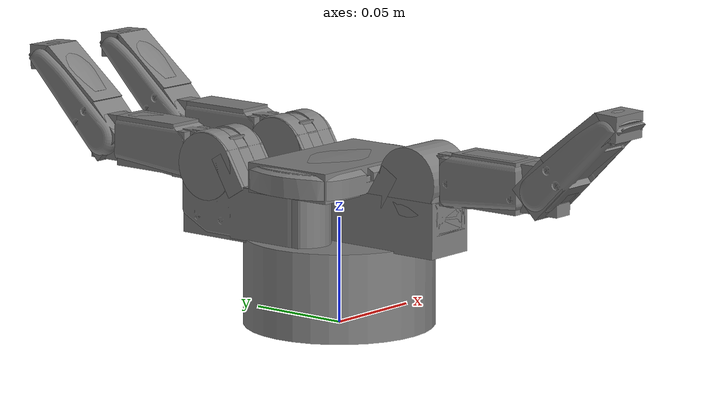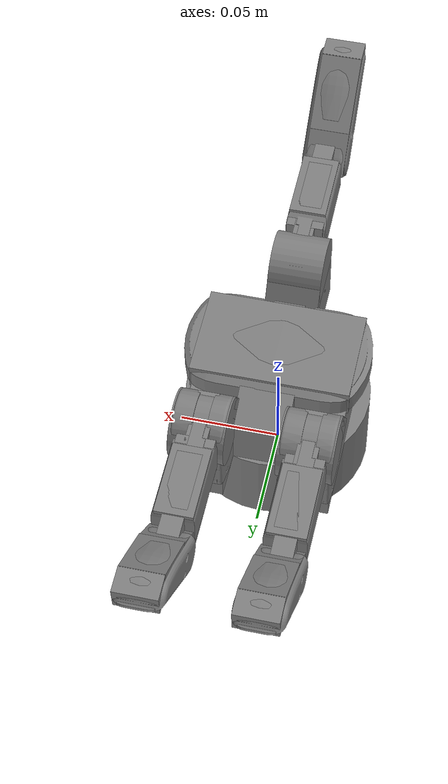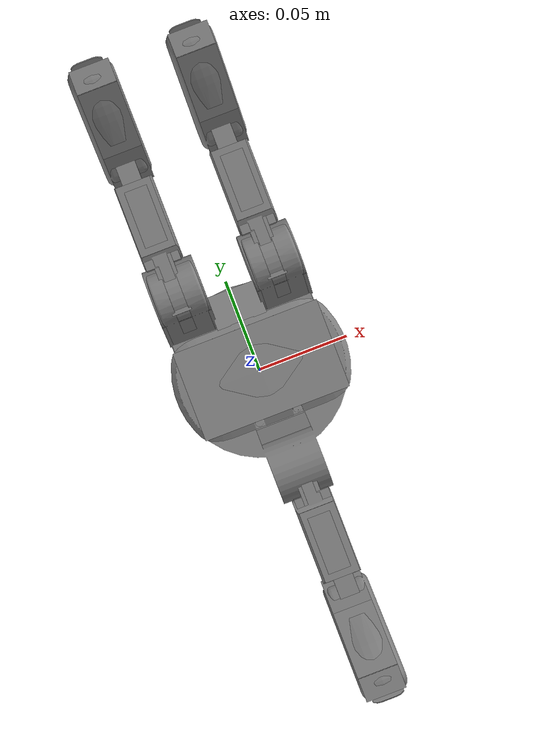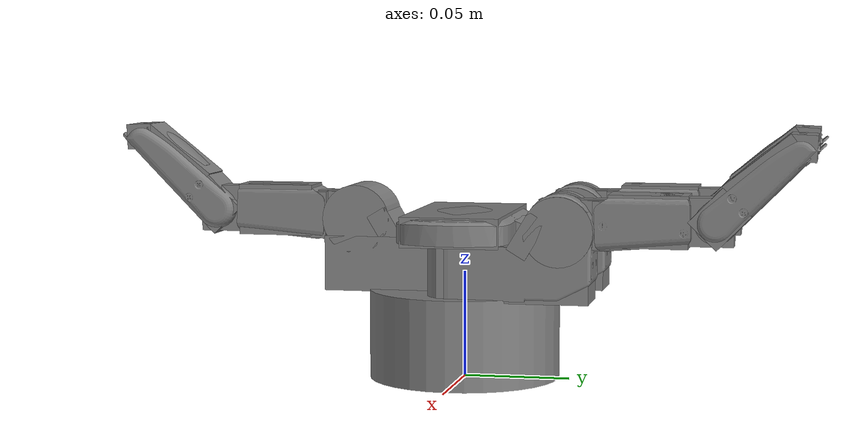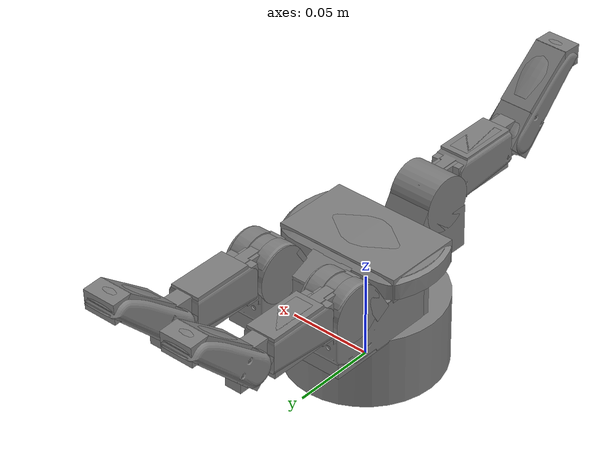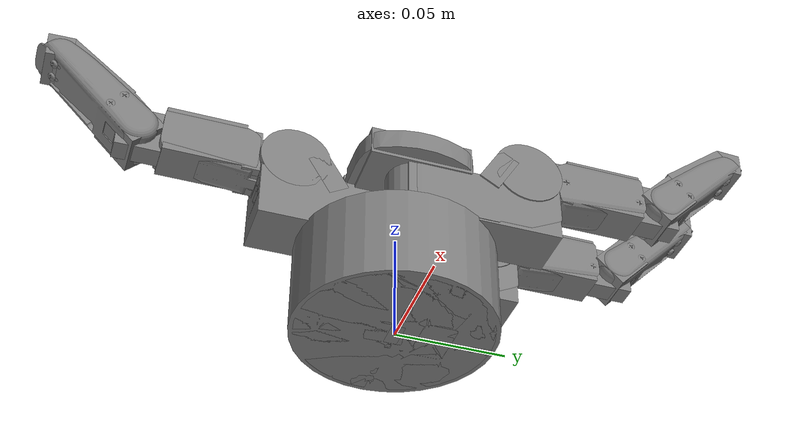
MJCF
<mujoco model="bhand_model">
  <compiler angle="radian" meshdir="/home/yareeez/AIST-hand/robot/hands/barrett_hand/"/>

  <asset>
    <mesh name="base_link" content_type="model/obj" file="meshes/visual/base_link.obj"/>
    <mesh name="base_link_cylinder" content_type="model/obj" file="meshes/collision/base_link_cylinder.obj"/>
    <mesh name="prox_link" content_type="model/obj" file="meshes/visual/prox_link.obj"/>
    <mesh name="prox_link_cylinder" content_type="model/obj" file="meshes/collision/prox_link_cylinder.obj"/>
    <mesh name="med_link" content_type="model/obj" file="meshes/visual/med_link.obj"/>
    <mesh name="dist_link" content_type="model/obj" file="meshes/visual/dist_link.obj"/>
  </asset>

  <worldbody>
    <geom type="mesh" contype="0" conaffinity="0" group="1" density="0" mesh="base_link"/>
    <geom type="mesh" mesh="base_link_cylinder"/>
    <geom size="0.013 0.054 0.013" pos="0 -0.011 0.054" type="box"/>
    <geom size="0.038 0.023 0.007" pos="0 0 0.072" type="box"/>
    <geom size="0.013 0.01 0.005" pos="0 0.032 0.068" quat="0.981048 -0.193767 0 0" type="box"/>
    <geom size="0.013 0.01 0.005" pos="0 -0.035 0.07" quat="0.870293 -0.492535 0 0" type="box"/>
    <body name="finger_1_prox_link" pos="0.025 0 0.0415" quat="0.707105 0 0 -0.707108">
      <inertial pos="-0.288649 0.00099838 0.171253" quat="0.54962 0.438092 0.426 0.569664" mass="0.561431" diaginertia="0.000339591 0.000307549 9.05655e-05"/>
      <joint name="finger_1_prox_joint" pos="0 0 0" axis="0 0 1" range="-3.14 0"/>
      <geom type="mesh" contype="0" conaffinity="0" group="1" density="0" mesh="prox_link"/>
      <geom type="mesh" mesh="prox_link_cylinder"/>
      <geom size="0.035 0.012 0.013" pos="-0.029 0 0.012" type="box"/>
      <geom size="0.01 0.013 0.005" pos="-0.036 0 0.03" quat="0.870539 0 0.4921 0" type="box"/>
      <body name="finger_1_med_liink" pos="-0.05 0 0.0339" quat="0.707105 0.707108 0 0">
        <inertial pos="-0.0309182 0.0019693 0.00074337" quat="-0.0214282 0.707188 0.0177553 0.706477" mass="0.313211" diaginertia="0.000177657 0.000174065 2.13826e-05"/>
        <joint name="finger_1_med_joint" pos="0 0 0" axis="0 0 1" range="-2.44 0"/>
        <geom type="mesh" contype="0" conaffinity="0" group="1" density="0" mesh="med_link"/>
        <geom size="0.018 0.012 0.009" pos="-0.04 0.003 0.001" type="box"/>
        <geom size="0.016 0.011 0.005" pos="-0.006 0.001 0.001" type="box"/>
        <geom size="0.01 0.011 0.005" pos="-0.068 0.003 0.001" type="box"/>
        <geom size="0.004 0.011 0.009" pos="-0.019 0.001 0.001" type="box"/>
        <body name="finger_1_dist_link" pos="-0.069936 0.003 0" quat="1 0 0 0">
          <inertial pos="-0.0183315 0.0175634 0.000497128" quat="0.251159 0.315294 0.632663 0.661246" mass="0.193423" diaginertia="6.47196e-05 5.98921e-05 1.29472e-05"/>
          <joint name="finger_1_dist_joint" pos="0 0 0" axis="0 0 1" range="-0.785 0"/>
          <geom type="mesh" contype="0" conaffinity="0" group="1" density="0" mesh="dist_link"/>
          <geom size="0.007 0.019 0.01" pos="-0.022 0.023 0" quat="0.900708 0 0 0.434425" type="box"/>
          <geom size="0.009 0.011 0.01" pos="-0.002 0.002 0" quat="0.925554 0 0 0.378616" type="box"/>
          <geom size="0.006 0.006 0.01" pos="-0.038 0.034 0" quat="0.691668 0 0 0.722215" type="box"/>
        </body>
      </body>
    </body>
    <body name="finger_2_prox_link" pos="-0.025 0 0.0415" quat="0.707105 0 0 -0.707108">
      <inertial pos="-0.288649 0.00099838 0.171253" quat="0.54962 0.438092 0.426 0.569664" mass="0.561431" diaginertia="0.000339591 0.000307549 9.05655e-05"/>
      <joint name="finger_2_prox_joint" pos="0 0 0" axis="0 0 1" range="0 3.14"/>
      <geom type="mesh" contype="0" conaffinity="0" group="1" density="0" mesh="prox_link"/>
      <geom type="mesh" mesh="prox_link_cylinder"/>
      <geom size="0.035 0.012 0.013" pos="-0.029 0 0.012" type="box"/>
      <geom size="0.01 0.013 0.005" pos="-0.036 0 0.03" quat="0.870539 0 0.4921 0" type="box"/>
      <body name="finger_2_med_link" pos="-0.05 0 0.0339" quat="0.707105 0.707108 0 0">
        <inertial pos="-0.0309061 0.00214998 0.00074337" quat="-0.0236473 0.707137 0.0196672 0.706407" mass="0.313211" diaginertia="0.000177657 0.000174065 2.13826e-05"/>
        <joint name="finger_2_med_joint" pos="0 0 0" axis="0 0 1" range="-2.44 0"/>
        <geom type="mesh" contype="0" conaffinity="0" group="1" density="0" mesh="med_link"/>
        <geom size="0.018 0.012 0.009" pos="-0.04 0.003 0.001" type="box"/>
        <geom size="0.016 0.011 0.005" pos="-0.006 0.001 0.001" type="box"/>
        <geom size="0.01 0.011 0.005" pos="-0.068 0.003 0.001" type="box"/>
        <geom size="0.004 0.011 0.009" pos="-0.019 0.001 0.001" type="box"/>
        <body name="finger_2_dist_link" pos="-0.069917 0.0034087 0">
          <inertial pos="-0.0181941 0.0177057 0.000497128" quat="0.248532 0.312878 0.633924 0.662178" mass="0.193423" diaginertia="6.47197e-05 5.9892e-05 1.29472e-05"/>
          <joint name="finger_2_dist_joint" pos="0 0 0" axis="0 0 1" range="-0.785 0"/>
          <geom type="mesh" contype="0" conaffinity="0" group="1" density="0" mesh="dist_link"/>
          <geom size="0.007 0.019 0.01" pos="-0.022 0.023 0" quat="0.900708 0 0 0.434425" type="box"/>
          <geom size="0.009 0.011 0.01" pos="-0.002 0.002 0" quat="0.925554 0 0 0.378616" type="box"/>
          <geom size="0.006 0.006 0.01" pos="-0.038 0.034 0" quat="0.691668 0 0 0.722215" type="box"/>
        </body>
      </body>
    </body>
    <body name="finger_3_med_link" pos="0 -0.05 0.0754" quat="0.499998 0.5 0.500002 0.5">
      <inertial pos="-0.0309182 0.0019693 0.00074337" quat="-0.0214282 0.707188 0.0177553 0.706477" mass="0.313211" diaginertia="0.000177657 0.000174065 2.13826e-05"/>
      <joint name="finger_3_med_joint" pos="0 0 0" axis="0 0 1" range="-2.44 0"/>
      <geom type="mesh" contype="0" conaffinity="0" group="1" density="0" mesh="med_link"/>
      <geom size="0.018 0.012 0.009" pos="-0.04 0.003 0.001" type="box"/>
      <geom size="0.016 0.011 0.005" pos="-0.006 0.001 0.001" type="box"/>
      <geom size="0.01 0.011 0.005" pos="-0.068 0.003 0.001" type="box"/>
      <geom size="0.004 0.011 0.009" pos="-0.019 0.001 0.001" type="box"/>
      <body name="finger_3_dist_link" pos="-0.069936 0.003 0">
        <inertial pos="-0.0183315 0.0175634 0.000497128" quat="0.251159 0.315294 0.632663 0.661246" mass="0.193423" diaginertia="6.47196e-05 5.98921e-05 1.29472e-05"/>
        <joint name="finger_3_dist_joint" pos="0 0 0" axis="0 0 1" range="-0.785 0"/>
        <geom type="mesh" contype="0" conaffinity="0" group="1" density="0" mesh="dist_link"/>
        <geom size="0.007 0.019 0.01" pos="-0.022 0.023 0" quat="0.900708 0 0 0.434425" type="box"/>
        <geom size="0.009 0.011 0.01" pos="-0.002 0.002 0" quat="0.925554 0 0 0.378616" type="box"/>
        <geom size="0.006 0.006 0.01" pos="-0.038 0.034 0" quat="0.691668 0 0 0.722215" type="box"/>
      </body>
    </body>
  </worldbody>
  <contact>
    <exclude body1="world" body2="finger_1_prox_link"/>
    <exclude body1="finger_1_prox_link" body2="finger_1_med_liink"/>
    <exclude body1="finger_1_med_liink" body2="finger_1_dist_link"/>
    <exclude body1="world" body2="finger_2_prox_link"/>
    <exclude body1="finger_2_prox_link" body2="finger_2_med_link"/>
    <exclude body1="finger_2_med_link" body2="finger_2_dist_link"/>
    <exclude body1="world" body2="finger_3_med_link"/>
    <exclude body1="finger_3_med_link" body2="finger_3_dist_link"/>
  </contact>
</mujoco>
